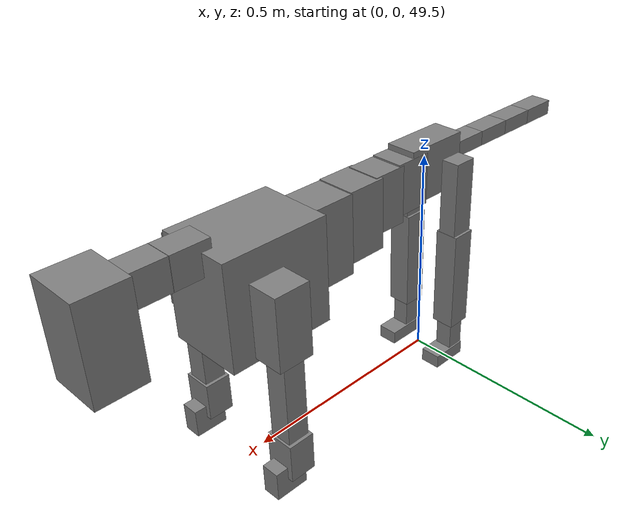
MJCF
<mujoco model="dog">

    <default>
        <joint armature="0.02" stiffness="1" damping="0.2" limited="true"/>
        <geom condim="3" friction="1 0.05 0.05" margin="0.01"/>
        <motor ctrllimited="true" ctrlrange="-1.0 1.0" forcelimited="true" gear="50"/>
    </default>

    <compiler inertiafromgeom="true" angle="radian"/>

    <option timestep="0.016" iterations="50" tolerance="1e-10" solver="Newton" jacobian="dense" cone="pyramidal"/>

    <size nconmax="20000" njmax="60000" nstack="5000000"/>
    <visual>
        <map force="0.1" zfar="30"/>
        <rgba haze="0.15 0.25 0.35 1"/>
        <quality shadowsize="2048"/>
        <global offwidth="800" offheight="800"/>
    </visual>

    <asset>
        <texture type="skybox" builtin="gradient" rgb1="0.3 0.5 0.7" rgb2="0 0 0" width="512" height="512"/>
        <texture name="texplane" type="2d" builtin="checker" rgb1=".2 .3 .4" rgb2=".1 0.15 0.2" width="512" height="512"
                 mark="cross" markrgb=".8 .8 .8"/>
        <texture name="texgeom" type="cube" builtin="flat" mark="cross" width="127" height="1278" rgb1="0.8 0.6 0.4"
                 rgb2="0.8 0.6 0.4" markrgb="1 1 1" random="0.01"/>

        <material name="matplane" reflectance="0.3" texture="texplane" texrepeat="1 1" texuniform="true"/>
        <material name="matgeom" texture="texgeom" texuniform="true" rgba="0.8 0.6 .4 1"/>
    </asset>

    <worldbody>
        <geom name="floor" pos="0 0 0" size="0 0 .25" type="plane" material="matplane" condim="3"/>

        <light directional="false" diffuse=".2 .2 .2" specular="0 0 0" pos="0 0 5" dir="0 0 -1" castshadow="false"/>
        <light mode="targetbodycom" target="torso" directional="false" diffuse=".8 .8 .8" specular="0.3 0.3 0.3"
               pos="0 0 4.0" dir="0 0 -1"/>

        <body name="root" pos="0 0 50">
            <freejoint name="root_1"/>
            <geom type="box" pos="0 0 -0.02" size="0.0774  0.0358  0.063" density="2030"/>

            <body name="spine1" pos="0.054 0 0">
                <joint name="spine1_y" axis="0 1 0" range="0 0.7" limited="true"/>
                <geom type="box" pos="0.02375 0 -0.03" size="0.04375  0.0375  0.05985" density="2030"/>

                <body name="spine2" pos="0.0612 0 0">
                    <joint name="spine2_y" axis="0 1 0" range="-0.15 0.15" limited="true"/>
                    <geom type="box" pos="0.03555  0  -0.04" size="0.04055  0.039  0.06615" density="2030"/>

                    <body name="spine3" pos="0.0730 0 0">
                        <joint name="spine3_y" axis="0 1 0" range="-0.15 0.15" limited="true"/>
                        <geom type="box" pos="0.03555  0  -0.057" size="0.04555  0.0445  0.081" density="2030"/>

                        <body name="spine4" pos="0.0780 0 0">
                            <joint name="spine4_y" axis="0 1 0" range="-0.15 0.15" limited="true"/>
                            <geom type="box" pos="0.05265  0  -0.07" size="0.05265  0.045  0.09135" density="2030"/>

                            <body name="torso" pos="0.1082 0 0">
                                <joint name="torso_y" axis="0 1 0" range="-0.15 0.15" limited="true"/>
                                <geom type="box" pos="0.11925  0  -0.085" size="0.11925  0.085  0.11745"
                                      density="2030"/>

                                <body name="neck1" pos="0.2160  0   0.0180">
                                    <joint name="neck1_y" axis="0 1 0" range="-1.2  -1" limited="true"/>
                                    <geom type="box" pos="0.0423  0  0" size="0.0423  0.03  0.036" density="2325"/>

                                    <body name="neck2" pos="0.0853  0  0">
                                        <joint name="neck2_y" axis="0 1 0" range="0.1  0" limited="true"/>
                                        <geom type="box" pos="0.0423  0  0" size="0.0423  0.03  0.036" density="2325"/>

                                        <body name="head" pos="0.0853  0  0">
                                            <joint name="head_y" axis="0 1 0" range="-0.3  -0.2" limited="true"/>
                                            <geom type="box" pos="0.0531  0  -0.055" size="0.0531  0.06  0.1044"
                                                  density="4030"/>

                                        </body>
                                    </body>
                                </body>

                                <body name="front_shoulder" pos="0.156  0   -0.0480">
                                    <joint name="front_shoulder_y" axis="0 1 0" range="-1 1.5" limited="true"/>
                                    <geom type="box" pos="0 0.13 -0.0534" size="0.0394  0.0337  0.0801" density="1158"/>
                                    <geom type="box" pos="0 -0.13 -0.0534" size="0.0394  0.0337  0.0801"
                                          density="1158"/>

                                    <body name="front_elbow" pos="0  0  -0.1069">
                                        <joint name="front_elbow_y" axis="0 1 0" range="-2 0" limited="true"/>
                                        <geom type="box" pos="0 0.13 -0.1129" size="0.0244  0.0249  0.1129"
                                              density="1081"/>
                                        <geom type="box" pos="0 -0.13 -0.1129" size="0.0244  0.0249  0.1129"
                                              density="1081"/>

                                        <body name="front_wrist" pos="0  0  -0.2257">
                                            <joint name="front_wrist_y" axis="0 1 0" range="-0.2 0" limited="true"/>
                                            <geom type="box" pos="0 0.13 -0.0307" size="0.0292  0.0324  0.0438"
                                                  density="1664"/>
                                            <geom type="box" pos="0 -0.13 -0.0307" size="0.0292  0.0324  0.0438"
                                                  density="1664"/>

                                            <body name="front_finger_end" pos="0  0  -0.0613">
                                                <joint name="front_finger_y" axis="0 1 0" range="-0.4 1"
                                                       limited="true"/>
                                                <geom type="box" pos="0.0202  0.13  -0.0179"
                                                      size="0.0370  0.0202  0.0329" density="1515"/>
                                                <geom type="box" pos="0.0202  -0.13  -0.0179"
                                                      size="0.0370  0.0202  0.0329" density="1515"/>

                                            </body>

                                        </body>
                                    </body>
                                </body>

                            </body>
                        </body>
                    </body>
                </body>
            </body>

            <body name="back_hip" pos="-0.03 0 -0.018">
                <joint name="back_hip_y" axis="0 1 0" range="-1.5 0.3" limited="true"/>
                <geom type="box" pos="0 0.07 -0.0841" size="0.0271  0.0213  0.1069" density="1154"/>
                <geom type="box" pos="0 -0.07 -0.0841" size="0.0271  0.0213  0.1069" density="1154"/>

                <body name="back_knee" pos="0  0  -0.1681">
                    <joint name="back_knee_y" axis="0 1 0" range="0 2.8" limited="true"/>
                    <geom type="box" pos="0 0.07 -0.1058" size="0.0279  0.0275  0.1214" density="1227"/>
                    <geom type="box" pos="0 -0.07 -0.1058" size="0.0279  0.0275  0.1214" density="1227"/>

                    <body name="back_ankle" pos="0  0  -0.2117">
                        <joint name="back_ankle_y" axis="0 1 0" range="-2.2 0" limited="true"/>
                        <geom type="box" pos="0 0.07 -0.0490" size="0.0204  0.0204  0.0603" density="1284"/>
                        <geom type="box" pos="0 -0.07 -0.0490" size="0.0204  0.0204  0.0603" density="1284"/>

                        <body name="back_toe_end" pos="0  0  -0.0980">
                            <joint name="back_toe_y" axis="0 1 0" range="-0.4 1" limited="true"/>
                            <geom type="box" pos="0.0240  0.07  -0.0009" size="0.0439  0.0240  0.0159" density="1515"/>
                            <geom type="box" pos="0.0240  -0.07  -0.0009" size="0.0439  0.0240  0.0159" density="1515"/>

                        </body>
                    </body>
                </body>
            </body>

            <body name="tail1" pos="-0.074 0 -0.006">
                <joint name="tail1_y" axis="0 1 0" range="-0.2 0.2" limited="true"/>
                <geom type="box" pos="-0.0536  0  0" size="0.045  0.025  0.0175" density="1587"/>

                <body name="tail2" pos="-0.09 0 0">
                    <joint name="tail2_y" axis="0 1 0" range="-0.2 0.2" limited="true"/>
                    <geom type="box" pos="-0.0536  0  0" size="0.045  0.025  0.0175" density="1587"/>

                    <body name="tail3" pos="-0.09 0 0">
                        <joint name="tail3_y" axis="0 1 0" range="-0.2 0.2" limited="true"/>
                        <geom type="box" pos="-0.0536  0  0" size="0.045  0.025  0.0175" density="1587"/>

                        <body name="tail4" pos="-0.09 0 0">
                            <joint name="tail4_y" axis="0 1 0" range="-0.2 0.2" limited="true"/>
                            <geom type="box" pos="-0.0536  0  0" size="0.045  0.025  0.0175" density="1587"/>

                        </body>
                    </body>
                </body>
            </body>
        </body>
    </worldbody>

    <actuator>
        <motor joint="spine1_y" forcerange="-150 150     "/>
        <motor joint="spine2_y" forcerange="-150 150     "/>
        <motor joint="spine3_y" forcerange="-150 150     "/>
        <motor joint="spine4_y" forcerange="-150 150     "/>
        <motor joint="torso_y" forcerange="-150 150     "/>
        <motor joint="neck1_y" forcerange="-100 100       "/>
        <motor joint="neck2_y" forcerange="-100 100       "/>
        <motor joint="head_y" forcerange="-150 150       "/>
        <motor joint="front_shoulder_y" forcerange="-170.46 154.26"/>
        <motor joint="front_elbow_y" forcerange="-163.84 117.39"/>
        <motor joint="front_wrist_y" forcerange="-142.58 116.72"/>
        <motor joint="front_finger_y" forcerange="-30.98 36.72"/>
        <motor joint="back_hip_y" forcerange="-271.28 212.19"/>
        <motor joint="back_knee_y" forcerange="-257.42 343.11"/>
        <motor joint="back_angle_y" forcerange="-54.59 171.61"/>
        <motor joint="back_toe_y" forcerange="-23.09 88.55"/>
        <motor joint="tail1_y" forcerange="-50 50     "/>
        <motor joint="tail2_y" forcerange="-50 50     "/>
        <motor joint="tail3_y" forcerange="-50 50     "/>
        <motor joint="tail4_y" forcerange="-50 50     "/>
    </actuator>
</mujoco>
